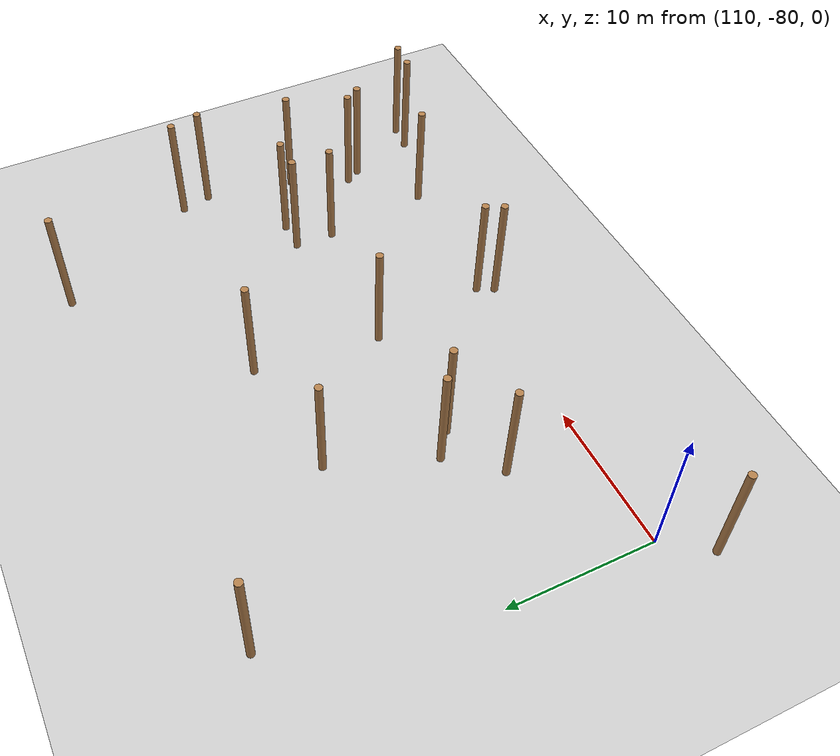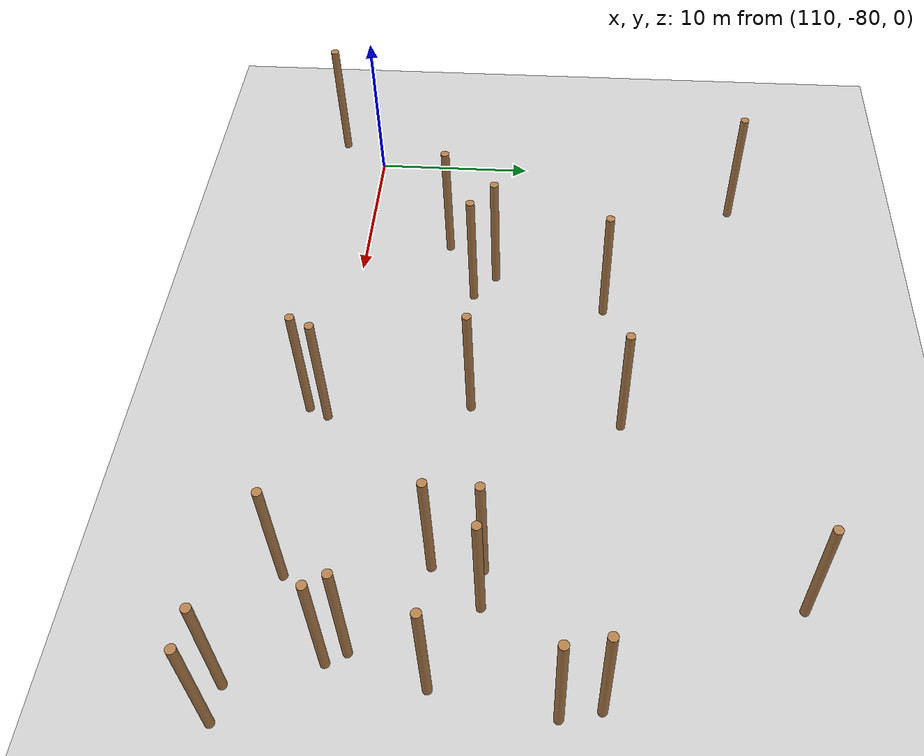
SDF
<sdf version="1.5">
 <world name="padure_tactica">
  <include><uri>model://sun</uri></include>
  <include><uri>model://ground_plane</uri></include>
  <model name="tree_71">
   <static>true</static>
   <pose>130.80 -72.16 4.0 0 0 0</pose>
   <link name="link">
    <collision name="collision">
     <geometry><cylinder><radius>0.25</radius><length>8.0</length></cylinder></geometry>
    </collision>
    <visual name="visual">
     <geometry><cylinder><radius>0.25</radius><length>8.0</length></cylinder></geometry>
     <material>
      <script><uri>file://media/materials/scripts/gazebo.material</uri><name>Gazebo/Wood</name></script>
     </material>
    </visual>
   </link>
  </model>
  <model name="tree_77">
   <static>true</static>
   <pose>142.69 -54.30 4.0 0 0 0</pose>
   <link name="link">
    <collision name="collision">
     <geometry><cylinder><radius>0.25</radius><length>8.0</length></cylinder></geometry>
    </collision>
    <visual name="visual">
     <geometry><cylinder><radius>0.25</radius><length>8.0</length></cylinder></geometry>
     <material>
      <script><uri>file://media/materials/scripts/gazebo.material</uri><name>Gazebo/Wood</name></script>
     </material>
    </visual>
   </link>
  </model>
  <model name="tree_172">
   <static>true</static>
   <pose>122.08 -72.69 4.0 0 0 0</pose>
   <link name="link">
    <collision name="collision">
     <geometry><cylinder><radius>0.25</radius><length>8.0</length></cylinder></geometry>
    </collision>
    <visual name="visual">
     <geometry><cylinder><radius>0.25</radius><length>8.0</length></cylinder></geometry>
     <material>
      <script><uri>file://media/materials/scripts/gazebo.material</uri><name>Gazebo/Wood</name></script>
     </material>
    </visual>
   </link>
  </model>
  <model name="tree_261">
   <static>true</static>
   <pose>148.39 -64.45 4.0 0 0 0</pose>
   <link name="link">
    <collision name="collision">
     <geometry><cylinder><radius>0.25</radius><length>8.0</length></cylinder></geometry>
    </collision>
    <visual name="visual">
     <geometry><cylinder><radius>0.25</radius><length>8.0</length></cylinder></geometry>
     <material>
      <script><uri>file://media/materials/scripts/gazebo.material</uri><name>Gazebo/Wood</name></script>
     </material>
    </visual>
   </link>
  </model>
  <model name="tree_409">
   <static>true</static>
   <pose>131.37 -81.46 4.0 0 0 0</pose>
   <link name="link">
    <collision name="collision">
     <geometry><cylinder><radius>0.25</radius><length>8.0</length></cylinder></geometry>
    </collision>
    <visual name="visual">
     <geometry><cylinder><radius>0.25</radius><length>8.0</length></cylinder></geometry>
     <material>
      <script><uri>file://media/materials/scripts/gazebo.material</uri><name>Gazebo/Wood</name></script>
     </material>
    </visual>
   </link>
  </model>
  <model name="tree_485">
   <static>true</static>
   <pose>148.88 -66.52 4.0 0 0 0</pose>
   <link name="link">
    <collision name="collision">
     <geometry><cylinder><radius>0.25</radius><length>8.0</length></cylinder></geometry>
    </collision>
    <visual name="visual">
     <geometry><cylinder><radius>0.25</radius><length>8.0</length></cylinder></geometry>
     <material>
      <script><uri>file://media/materials/scripts/gazebo.material</uri><name>Gazebo/Wood</name></script>
     </material>
    </visual>
   </link>
  </model>
  <model name="tree_495">
   <static>true</static>
   <pose>147.78 -72.87 4.0 0 0 0</pose>
   <link name="link">
    <collision name="collision">
     <geometry><cylinder><radius>0.25</radius><length>8.0</length></cylinder></geometry>
    </collision>
    <visual name="visual">
     <geometry><cylinder><radius>0.25</radius><length>8.0</length></cylinder></geometry>
     <material>
      <script><uri>file://media/materials/scripts/gazebo.material</uri><name>Gazebo/Wood</name></script>
     </material>
    </visual>
   </link>
  </model>
  <model name="tree_513">
   <static>true</static>
   <pose>148.08 -82.76 4.0 0 0 0</pose>
   <link name="link">
    <collision name="collision">
     <geometry><cylinder><radius>0.25</radius><length>8.0</length></cylinder></geometry>
    </collision>
    <visual name="visual">
     <geometry><cylinder><radius>0.25</radius><length>8.0</length></cylinder></geometry>
     <material>
      <script><uri>file://media/materials/scripts/gazebo.material</uri><name>Gazebo/Wood</name></script>
     </material>
    </visual>
   </link>
  </model>
  <model name="tree_514">
   <static>true</static>
   <pose>146.74 -78.00 4.0 0 0 0</pose>
   <link name="link">
    <collision name="collision">
     <geometry><cylinder><radius>0.25</radius><length>8.0</length></cylinder></geometry>
    </collision>
    <visual name="visual">
     <geometry><cylinder><radius>0.25</radius><length>8.0</length></cylinder></geometry>
     <material>
      <script><uri>file://media/materials/scripts/gazebo.material</uri><name>Gazebo/Wood</name></script>
     </material>
    </visual>
   </link>
  </model>
  <model name="tree_526">
   <static>true</static>
   <pose>120.43 -71.41 4.0 0 0 0</pose>
   <link name="link">
    <collision name="collision">
     <geometry><cylinder><radius>0.25</radius><length>8.0</length></cylinder></geometry>
    </collision>
    <visual name="visual">
     <geometry><cylinder><radius>0.25</radius><length>8.0</length></cylinder></geometry>
     <material>
      <script><uri>file://media/materials/scripts/gazebo.material</uri><name>Gazebo/Wood</name></script>
     </material>
    </visual>
   </link>
  </model>
  <model name="tree_559">
   <static>true</static>
   <pose>146.13 -76.98 4.0 0 0 0</pose>
   <link name="link">
    <collision name="collision">
     <geometry><cylinder><radius>0.25</radius><length>8.0</length></cylinder></geometry>
    </collision>
    <visual name="visual">
     <geometry><cylinder><radius>0.25</radius><length>8.0</length></cylinder></geometry>
     <material>
      <script><uri>file://media/materials/scripts/gazebo.material</uri><name>Gazebo/Wood</name></script>
     </material>
    </visual>
   </link>
  </model>
  <model name="tree_689">
   <static>true</static>
   <pose>131.69 -63.52 4.0 0 0 0</pose>
   <link name="link">
    <collision name="collision">
     <geometry><cylinder><radius>0.25</radius><length>8.0</length></cylinder></geometry>
    </collision>
    <visual name="visual">
     <geometry><cylinder><radius>0.25</radius><length>8.0</length></cylinder></geometry>
     <material>
      <script><uri>file://media/materials/scripts/gazebo.material</uri><name>Gazebo/Wood</name></script>
     </material>
    </visual>
   </link>
  </model>
  <model name="tree_739">
   <static>true</static>
   <pose>142.14 -80.94 4.0 0 0 0</pose>
   <link name="link">
    <collision name="collision">
     <geometry><cylinder><radius>0.25</radius><length>8.0</length></cylinder></geometry>
    </collision>
    <visual name="visual">
     <geometry><cylinder><radius>0.25</radius><length>8.0</length></cylinder></geometry>
     <material>
      <script><uri>file://media/materials/scripts/gazebo.material</uri><name>Gazebo/Wood</name></script>
     </material>
    </visual>
   </link>
  </model>
  <model name="tree_814">
   <static>true</static>
   <pose>131.91 -80.33 4.0 0 0 0</pose>
   <link name="link">
    <collision name="collision">
     <geometry><cylinder><radius>0.25</radius><length>8.0</length></cylinder></geometry>
    </collision>
    <visual name="visual">
     <geometry><cylinder><radius>0.25</radius><length>8.0</length></cylinder></geometry>
     <material>
      <script><uri>file://media/materials/scripts/gazebo.material</uri><name>Gazebo/Wood</name></script>
     </material>
    </visual>
   </link>
  </model>
  <model name="tree_852">
   <static>true</static>
   <pose>113.64 -56.25 4.0 0 0 0</pose>
   <link name="link">
    <collision name="collision">
     <geometry><cylinder><radius>0.25</radius><length>8.0</length></cylinder></geometry>
    </collision>
    <visual name="visual">
     <geometry><cylinder><radius>0.25</radius><length>8.0</length></cylinder></geometry>
     <material>
      <script><uri>file://media/materials/scripts/gazebo.material</uri><name>Gazebo/Wood</name></script>
     </material>
    </visual>
   </link>
  </model>
  <model name="tree_886">
   <static>true</static>
   <pose>122.94 -64.58 4.0 0 0 0</pose>
   <link name="link">
    <collision name="collision">
     <geometry><cylinder><radius>0.25</radius><length>8.0</length></cylinder></geometry>
    </collision>
    <visual name="visual">
     <geometry><cylinder><radius>0.25</radius><length>8.0</length></cylinder></geometry>
     <material>
      <script><uri>file://media/materials/scripts/gazebo.material</uri><name>Gazebo/Wood</name></script>
     </material>
    </visual>
   </link>
  </model>
  <model name="tree_920">
   <static>true</static>
   <pose>141.23 -73.36 4.0 0 0 0</pose>
   <link name="link">
    <collision name="collision">
     <geometry><cylinder><radius>0.25</radius><length>8.0</length></cylinder></geometry>
    </collision>
    <visual name="visual">
     <geometry><cylinder><radius>0.25</radius><length>8.0</length></cylinder></geometry>
     <material>
      <script><uri>file://media/materials/scripts/gazebo.material</uri><name>Gazebo/Wood</name></script>
     </material>
    </visual>
   </link>
  </model>
  <model name="tree_959">
   <static>true</static>
   <pose>141.27 -70.63 4.0 0 0 0</pose>
   <link name="link">
    <collision name="collision">
     <geometry><cylinder><radius>0.25</radius><length>8.0</length></cylinder></geometry>
    </collision>
    <visual name="visual">
     <geometry><cylinder><radius>0.25</radius><length>8.0</length></cylinder></geometry>
     <material>
      <script><uri>file://media/materials/scripts/gazebo.material</uri><name>Gazebo/Wood</name></script>
     </material>
    </visual>
   </link>
  </model>
  <model name="tree_988">
   <static>true</static>
   <pose>117.83 -74.56 4.0 0 0 0</pose>
   <link name="link">
    <collision name="collision">
     <geometry><cylinder><radius>0.25</radius><length>8.0</length></cylinder></geometry>
    </collision>
    <visual name="visual">
     <geometry><cylinder><radius>0.25</radius><length>8.0</length></cylinder></geometry>
     <material>
      <script><uri>file://media/materials/scripts/gazebo.material</uri><name>Gazebo/Wood</name></script>
     </material>
    </visual>
   </link>
  </model>
  <model name="tree_992">
   <static>true</static>
   <pose>143.36 -70.63 4.0 0 0 0</pose>
   <link name="link">
    <collision name="collision">
     <geometry><cylinder><radius>0.25</radius><length>8.0</length></cylinder></geometry>
    </collision>
    <visual name="visual">
     <geometry><cylinder><radius>0.25</radius><length>8.0</length></cylinder></geometry>
     <material>
      <script><uri>file://media/materials/scripts/gazebo.material</uri><name>Gazebo/Wood</name></script>
     </material>
    </visual>
   </link>
  </model>
  <model name="tree_1154">
   <static>true</static>
   <pose>107.94 -82.85 4.0 0 0 0</pose>
   <link name="link">
    <collision name="collision">
     <geometry><cylinder><radius>0.25</radius><length>8.0</length></cylinder></geometry>
    </collision>
    <visual name="visual">
     <geometry><cylinder><radius>0.25</radius><length>8.0</length></cylinder></geometry>
     <material>
      <script><uri>file://media/materials/scripts/gazebo.material</uri><name>Gazebo/Wood</name></script>
     </material>
    </visual>
   </link>
  </model>
  <model name="tree_1196">
   <static>true</static>
   <pose>149.96 -82.93 4.0 0 0 0</pose>
   <link name="link">
    <collision name="collision">
     <geometry><cylinder><radius>0.25</radius><length>8.0</length></cylinder></geometry>
    </collision>
    <visual name="visual">
     <geometry><cylinder><radius>0.25</radius><length>8.0</length></cylinder></geometry>
     <material>
      <script><uri>file://media/materials/scripts/gazebo.material</uri><name>Gazebo/Wood</name></script>
     </material>
    </visual>
   </link>
  </model>
 </world>
</sdf>
